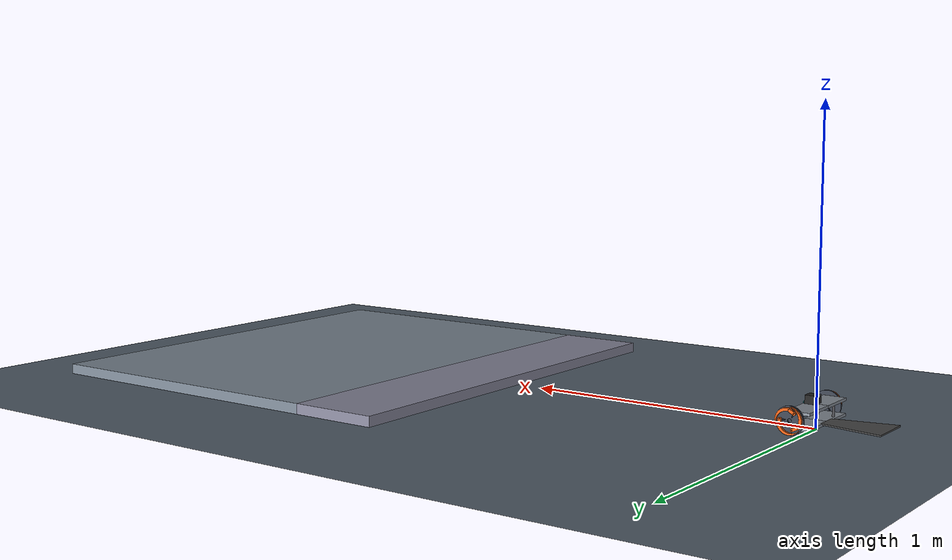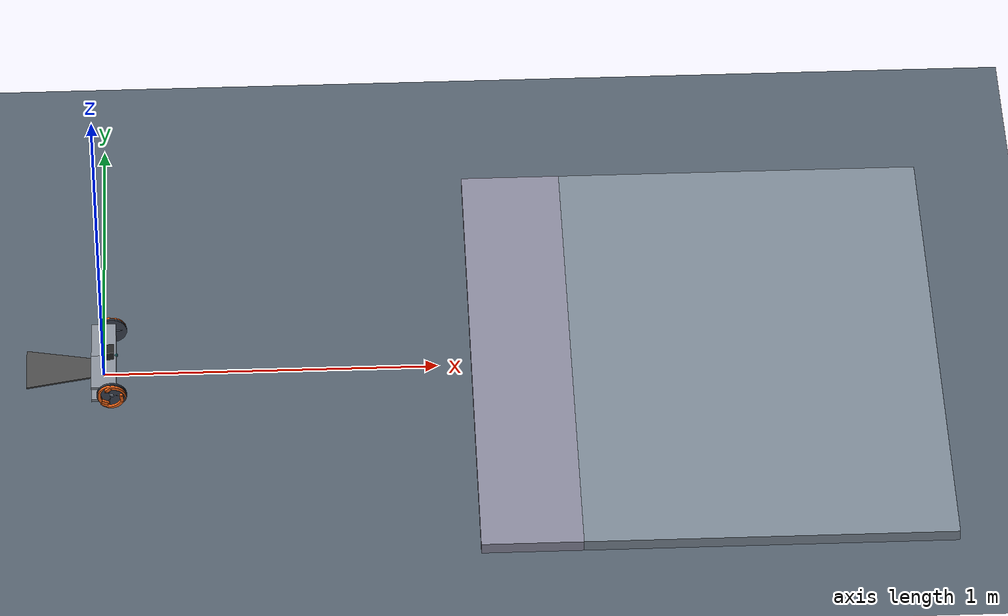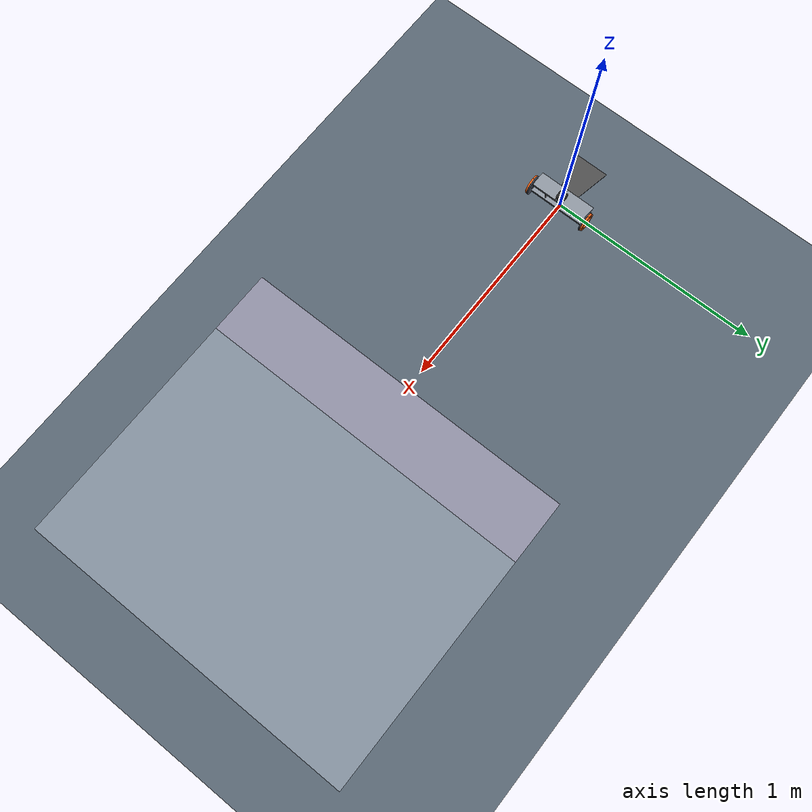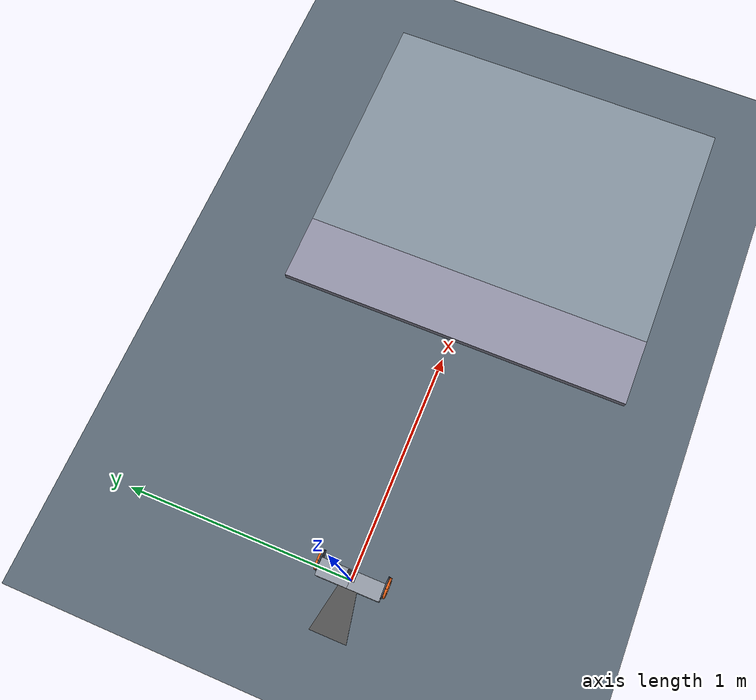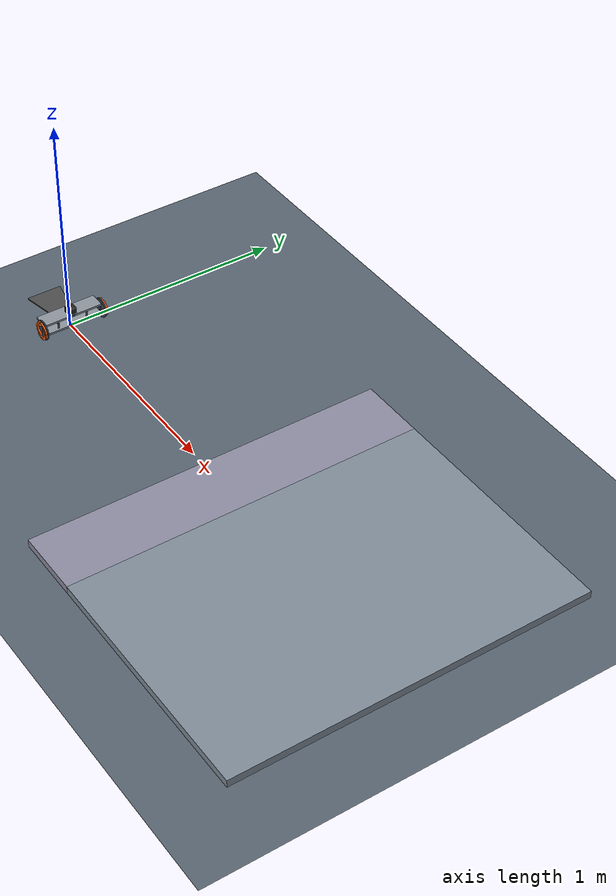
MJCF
<mujoco model="stair_climber_proxy">
  <compiler angle="radian" inertiafromgeom="true" meshdir="mesh_assets"/>
  <option timestep="0.001" integrator="implicitfast" gravity="0 0 -9.81" iterations="150" noslip_iterations="5" cone="elliptic"/>
  <statistic extent="1.6" center="1.6000 0.0000 0.4000"/>

  <asset>
    <texture type="skybox" builtin="gradient" rgb1="0.55 0.70 0.90"
             rgb2="0.90 0.93 0.97" width="256" height="256"/>
    <texture name="grid" type="2d" builtin="checker" rgb1="0.30 0.35 0.40"
             rgb2="0.38 0.43 0.48" width="300" height="300"/>
    <material name="grid" texture="grid" texrepeat="10 10" reflectance="0.05"/>
    <mesh name="tail_plate" file="tail.stl"/>
    <mesh name="disk" file="disk.stl"/>
    <mesh name="leg1" file="leg1.stl"/>
    <mesh name="leg2" file="leg2.stl"/>
    <mesh name="leg3" file="leg3.stl"/>
    <mesh name="leg1_r" file="leg1.stl" scale="1 -1 1"/>
    <mesh name="leg2_r" file="leg2.stl" scale="1 -1 1"/>
    <mesh name="leg3_r" file="leg3.stl" scale="1 -1 1"/>
  </asset>

  <default>
    <default class="spoke">
      <geom type="capsule"
            friction="1.3 0.005 0.0001" rgba="0.95 0.40 0.10 1"/>
    </default>
  </default>

  <worldbody>
    <light pos="1 -1 3" dir="-0.3 0.3 -1" directional="true" diffuse="0.9 0.9 0.9"/>
    <geom name="floor" type="plane" size="14 4 0.1" material="grid"/>

    <geom name="step0" type="box" size="0.1500 0.8000 0.0175" pos="1.2500 0.0000 0.0175" friction="1.1 0.005 0.0001" rgba="0.55 0.55 0.63 1"/>
    <geom name="platform" type="box" size="0.5500 0.8000 0.0175" pos="1.9500 0.0000 0.0175" friction="1.1 0.005 0.0001" rgba="0.5 0.55 0.6 1"/>

    <body name="chassis" pos="0 0 0.0500">
      <freejoint/>
      <!-- 상판 2장(좌우 이어붙임) + 하판 2장(좌우 이어붙임) + 기둥 8개(판 세트당 4개)
           로 구성된 실제 샷시 구조. z=0을 상판-하판 사이 정중앙으로 둠. -->
      <geom name="plate_top_l" type="box" size="0.0367 0.0688 0.0045" pos="0.0000 0.0688 0.0245" mass="0.400" rgba="0.55 0.58 0.62 1"/>
      <geom name="plate_bottom_l" type="box" size="0.0367 0.0688 0.0045" pos="0.0000 0.0688 -0.0245" mass="0.400" rgba="0.55 0.58 0.62 1"/>
      <geom name="rod_l_f" type="cylinder" size="0.0040 0.0200" pos="0.0250 0.0688 0.0000" mass="0.100" rgba="0.3 0.3 0.32 1"/>
      <geom name="rod_l_b" type="cylinder" size="0.0040 0.0200" pos="-0.0250 0.0688 0.0000" mass="0.100" rgba="0.3 0.3 0.32 1"/>
      <geom name="plate_top_r" type="box" size="0.0367 0.0688 0.0045" pos="0.0000 -0.0688 0.0245" mass="0.400" rgba="0.55 0.58 0.62 1"/>
      <geom name="plate_bottom_r" type="box" size="0.0367 0.0688 0.0045" pos="0.0000 -0.0688 -0.0245" mass="0.400" rgba="0.55 0.58 0.62 1"/>
      <geom name="rod_r_f" type="cylinder" size="0.0040 0.0200" pos="0.0250 -0.0688 0.0000" mass="0.100" rgba="0.3 0.3 0.32 1"/>
      <geom name="rod_r_b" type="cylinder" size="0.0040 0.0200" pos="-0.0250 -0.0688 0.0000" mass="0.100" rgba="0.3 0.3 0.32 1"/>
      <!-- CygLiDAR (37.4 x 37.4 x 27mm) — 실측: 상판 위쪽 표면, 좌우 중앙, 전방 -->
      <geom name="cyglidar_box" type="box"
            size="0.0187 0.0187 0.0135"
            pos="0.0130 0.0000 0.0425"
            mass="0.03" rgba="0.15 0.15 0.15 1"/>

      <!-- 꼬리: 실제 STL 평판(160mm 폭 x 200mm 길이 x 5mm 두께). 하판 후방 중앙에 장착. -->
      <geom name="tail" type="mesh" mesh="tail_plate"
            friction="0.15 0.005 0.0001" rgba="0.3 0.3 0.3 1"/>

      <!-- IMU: 실측 위치대로 라이다 바로 뒤, 상판 위쪽 표면, 좌우(Y) 중앙 장착 -->
      <site name="imu_l" pos="0.0067 0.0000 0.0290" size="0.008" rgba="1 1 0 0.5"/>
      <site name="lidar_0_0" pos="0.0387 0.0000 0.0290" zaxis="0.8652 -0.4995 -0.0436" size="0.005" rgba="0 1 1 0.35"/>
      <site name="lidar_0_1" pos="0.0387 0.0000 0.0290" zaxis="0.9650 -0.2586 -0.0436" size="0.005" rgba="0 1 1 0.35"/>
      <site name="lidar_0_2" pos="0.0387 0.0000 0.0290" zaxis="0.9990 0.0000 -0.0436" size="0.005" rgba="0 1 1 0.35"/>
      <site name="lidar_0_3" pos="0.0387 0.0000 0.0290" zaxis="0.9650 0.2586 -0.0436" size="0.005" rgba="0 1 1 0.35"/>
      <site name="lidar_0_4" pos="0.0387 0.0000 0.0290" zaxis="0.8652 0.4995 -0.0436" size="0.005" rgba="0 1 1 0.35"/>
      <site name="lidar_1_0" pos="0.0387 0.0000 0.0290" zaxis="0.8412 -0.4857 -0.2377" size="0.005" rgba="0 1 1 0.35"/>
      <site name="lidar_1_1" pos="0.0387 0.0000 0.0290" zaxis="0.9382 -0.2514 -0.2377" size="0.005" rgba="0 1 1 0.35"/>
      <site name="lidar_1_2" pos="0.0387 0.0000 0.0290" zaxis="0.9713 0.0000 -0.2377" size="0.005" rgba="0 1 1 0.35"/>
      <site name="lidar_1_3" pos="0.0387 0.0000 0.0290" zaxis="0.9382 0.2514 -0.2377" size="0.005" rgba="0 1 1 0.35"/>
      <site name="lidar_1_4" pos="0.0387 0.0000 0.0290" zaxis="0.8412 0.4857 -0.2377" size="0.005" rgba="0 1 1 0.35"/>
      <site name="lidar_2_0" pos="0.0387 0.0000 0.0290" zaxis="0.7849 -0.4532 -0.4226" size="0.005" rgba="0 1 1 0.35"/>
      <site name="lidar_2_1" pos="0.0387 0.0000 0.0290" zaxis="0.8754 -0.2346 -0.4226" size="0.005" rgba="0 1 1 0.35"/>
      <site name="lidar_2_2" pos="0.0387 0.0000 0.0290" zaxis="0.9063 0.0000 -0.4226" size="0.005" rgba="0 1 1 0.35"/>
      <site name="lidar_2_3" pos="0.0387 0.0000 0.0290" zaxis="0.8754 0.2346 -0.4226" size="0.005" rgba="0 1 1 0.35"/>
      <site name="lidar_2_4" pos="0.0387 0.0000 0.0290" zaxis="0.7849 0.4532 -0.4226" size="0.005" rgba="0 1 1 0.35"/>
      <site name="lidar_3_0" pos="0.0387 0.0000 0.0290" zaxis="0.6984 -0.4032 -0.5913" size="0.005" rgba="0 1 1 0.35"/>
      <site name="lidar_3_1" pos="0.0387 0.0000 0.0290" zaxis="0.7790 -0.2087 -0.5913" size="0.005" rgba="0 1 1 0.35"/>
      <site name="lidar_3_2" pos="0.0387 0.0000 0.0290" zaxis="0.8064 0.0000 -0.5913" size="0.005" rgba="0 1 1 0.35"/>
      <site name="lidar_3_3" pos="0.0387 0.0000 0.0290" zaxis="0.7790 0.2087 -0.5913" size="0.005" rgba="0 1 1 0.35"/>
      <site name="lidar_3_4" pos="0.0387 0.0000 0.0290" zaxis="0.6984 0.4032 -0.5913" size="0.005" rgba="0 1 1 0.35"/>
      <site name="lidar_4_0" pos="0.0387 0.0000 0.0290" zaxis="0.5851 -0.3378 -0.7373" size="0.005" rgba="0 1 1 0.35"/>
      <site name="lidar_4_1" pos="0.0387 0.0000 0.0290" zaxis="0.6526 -0.1749 -0.7373" size="0.005" rgba="0 1 1 0.35"/>
      <site name="lidar_4_2" pos="0.0387 0.0000 0.0290" zaxis="0.6756 0.0000 -0.7373" size="0.005" rgba="0 1 1 0.35"/>
      <site name="lidar_4_3" pos="0.0387 0.0000 0.0290" zaxis="0.6526 0.1749 -0.7373" size="0.005" rgba="0 1 1 0.35"/>
      <site name="lidar_4_4" pos="0.0387 0.0000 0.0290" zaxis="0.5851 0.3378 -0.7373" size="0.005" rgba="0 1 1 0.35"/>
      <site name="tof_0" pos="0.0387 0.0000 0.0290" zaxis="1 0 0" size="0.005" rgba="1 1 0 0.35"/>

      <!-- 로봇을 따라다니는 카메라 (뷰어에서 [ ] 키로 전환) -->
      <camera name="follow" mode="trackcom" pos="0 -2.2 0.75"
              xyaxes="1 0 0 0 0.32 0.95"/>

      <body name="wheel_l" pos="0.0240 0.1406 0.0000">
        <joint name="wheel_l" type="hinge" axis="0 1 0"
               damping="0.15" armature="0.006"/>
        <geom name="hub_l" type="mesh" mesh="disk" mass="0.30"
              friction="1.0 0.005 0.0001" rgba="0.25 0.28 0.33 1"/>

        <body name="leg_l1" pos="-0.0135 0.0038 0.0195">
          <joint name="leg_l1" type="hinge" axis="0 -1 0" range="0 0.5061454830783556"
                 damping="0.3" armature="0.001"/>
          <geom type="mesh" mesh="leg1" class="spoke"/>
        </body>
        <body name="leg_l2" pos="0.0237 0.0038 0.0020">
          <joint name="leg_l2" type="hinge" axis="0 -1 0" range="0 0.5061454830783556"
                 damping="0.3" armature="0.001"/>
          <geom type="mesh" mesh="leg2" class="spoke"/>
        </body>
        <body name="leg_l3" pos="-0.0101 0.0038 -0.0215">
          <joint name="leg_l3" type="hinge" axis="0 -1 0" range="0 0.5061454830783556"
                 damping="0.3" armature="0.001"/>
          <geom type="mesh" mesh="leg3" class="spoke"/>
        </body>
      </body>

      <body name="wheel_r" pos="0.0240 -0.1406 0.0000">
        <joint name="wheel_r" type="hinge" axis="0 1 0"
               damping="0.15" armature="0.006"/>
        <geom name="hub_r" type="mesh" mesh="disk" mass="0.30"
              friction="1.0 0.005 0.0001" rgba="0.25 0.28 0.33 1"/>

        <body name="leg_r1" pos="-0.0135 -0.0038 0.0195">
          <joint name="leg_r1" type="hinge" axis="0 -1 0" range="0 0.5061454830783556"
                 damping="0.3" armature="0.001"/>
          <geom type="mesh" mesh="leg1_r" class="spoke"/>
        </body>
        <body name="leg_r2" pos="0.0237 -0.0038 0.0020">
          <joint name="leg_r2" type="hinge" axis="0 -1 0" range="0 0.5061454830783556"
                 damping="0.3" armature="0.001"/>
          <geom type="mesh" mesh="leg2_r" class="spoke"/>
        </body>
        <body name="leg_r3" pos="-0.0101 -0.0038 -0.0215">
          <joint name="leg_r3" type="hinge" axis="0 -1 0" range="0 0.5061454830783556"
                 damping="0.3" armature="0.001"/>
          <geom type="mesh" mesh="leg3_r" class="spoke"/>
        </body>
      </body>
    </body>
  </worldbody>

  <!-- 같은 바퀴의 다리끼리는 충돌 계산 제외 — 실제로는 볼트로 결합되는
       부분이라 메시가 서로 겹쳐있는 게 정상(부품 경계에서 살짝 겹침) -->
  <contact>
    <exclude body1="leg_l1" body2="leg_l2"/>
    <exclude body1="leg_l1" body2="leg_l3"/>
    <exclude body1="leg_l2" body2="leg_l3"/>
    <exclude body1="leg_r1" body2="leg_r2"/>
    <exclude body1="leg_r1" body2="leg_r3"/>
    <exclude body1="leg_r2" body2="leg_r3"/>
  </contact>

  <!-- 스포크 3개를 기계적으로 연동: 액추에이터 1개로 동시에 개폐 -->
  <equality>
    <joint joint1="leg_l2" joint2="leg_l1" polycoef="0 1 0 0 0"/>
    <joint joint1="leg_l3" joint2="leg_l1" polycoef="0 1 0 0 0"/>
    <joint joint1="leg_r2" joint2="leg_r1" polycoef="0 1 0 0 0"/>
    <joint joint1="leg_r3" joint2="leg_r1" polycoef="0 1 0 0 0"/>
  </equality>

  <actuator>
    <motor    name="drive_l"  joint="wheel_l"  gear="1" ctrlrange="-12.0 12.0"/>
    <motor    name="drive_r"  joint="wheel_r"  gear="1" ctrlrange="-12.0 12.0"/>
    <position name="deploy_l" joint="leg_l1" kp="40" forcerange="-30 30"
              ctrlrange="0 0.5061454830783556"/>
    <position name="deploy_r" joint="leg_r1" kp="40" forcerange="-30 30"
              ctrlrange="0 0.5061454830783556"/>
  </actuator>

  <sensor>
    <rangefinder name="lidar_0_0" site="lidar_0_0" cutoff="2.5"/>
    <rangefinder name="lidar_0_1" site="lidar_0_1" cutoff="2.5"/>
    <rangefinder name="lidar_0_2" site="lidar_0_2" cutoff="2.5"/>
    <rangefinder name="lidar_0_3" site="lidar_0_3" cutoff="2.5"/>
    <rangefinder name="lidar_0_4" site="lidar_0_4" cutoff="2.5"/>
    <rangefinder name="lidar_1_0" site="lidar_1_0" cutoff="2.5"/>
    <rangefinder name="lidar_1_1" site="lidar_1_1" cutoff="2.5"/>
    <rangefinder name="lidar_1_2" site="lidar_1_2" cutoff="2.5"/>
    <rangefinder name="lidar_1_3" site="lidar_1_3" cutoff="2.5"/>
    <rangefinder name="lidar_1_4" site="lidar_1_4" cutoff="2.5"/>
    <rangefinder name="lidar_2_0" site="lidar_2_0" cutoff="2.5"/>
    <rangefinder name="lidar_2_1" site="lidar_2_1" cutoff="2.5"/>
    <rangefinder name="lidar_2_2" site="lidar_2_2" cutoff="2.5"/>
    <rangefinder name="lidar_2_3" site="lidar_2_3" cutoff="2.5"/>
    <rangefinder name="lidar_2_4" site="lidar_2_4" cutoff="2.5"/>
    <rangefinder name="lidar_3_0" site="lidar_3_0" cutoff="2.5"/>
    <rangefinder name="lidar_3_1" site="lidar_3_1" cutoff="2.5"/>
    <rangefinder name="lidar_3_2" site="lidar_3_2" cutoff="2.5"/>
    <rangefinder name="lidar_3_3" site="lidar_3_3" cutoff="2.5"/>
    <rangefinder name="lidar_3_4" site="lidar_3_4" cutoff="2.5"/>
    <rangefinder name="lidar_4_0" site="lidar_4_0" cutoff="2.5"/>
    <rangefinder name="lidar_4_1" site="lidar_4_1" cutoff="2.5"/>
    <rangefinder name="lidar_4_2" site="lidar_4_2" cutoff="2.5"/>
    <rangefinder name="lidar_4_3" site="lidar_4_3" cutoff="2.5"/>
    <rangefinder name="lidar_4_4" site="lidar_4_4" cutoff="2.5"/>
    <rangefinder name="tof_0" site="tof_0" cutoff="0.15"/>
    <gyro          name="imu_gyro" site="imu_l"/>
    <accelerometer name="imu_acc"  site="imu_l"/>
    <framequat     name="imu_quat" objtype="site" objname="imu_l"/>
  </sensor>

  <keyframe>
    <key name="home" qpos="0 0 0.0500 1 0 0 0   0 0   0 0 0 0 0 0"/>
  </keyframe>
</mujoco>
